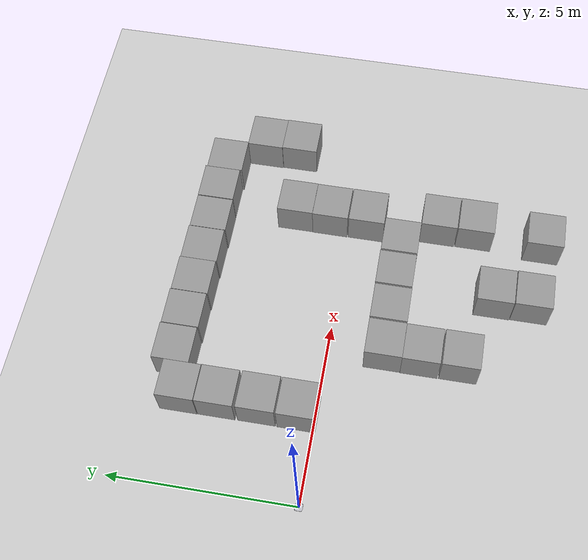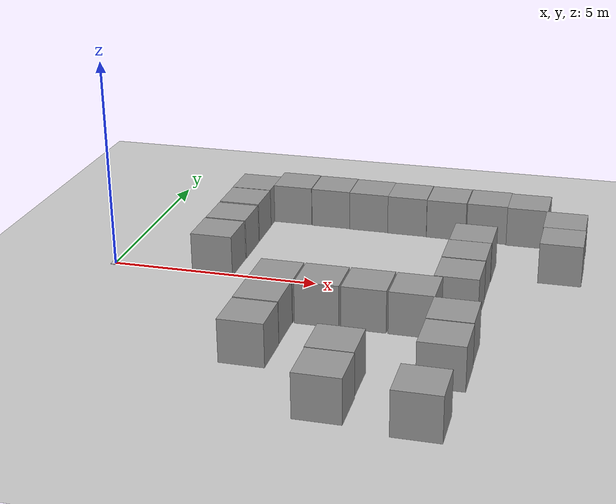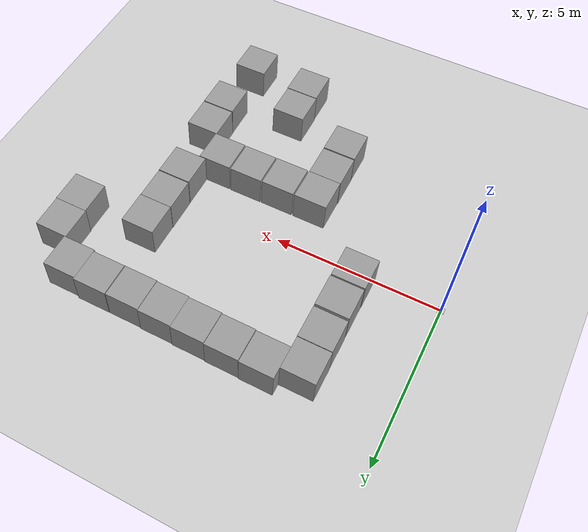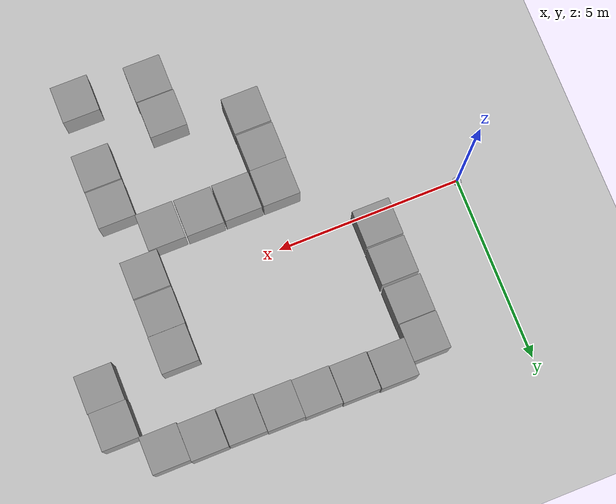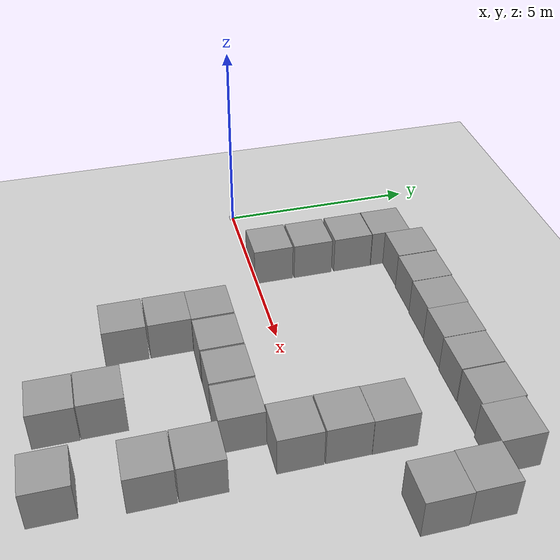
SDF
<sdf version="1.7">
 <world name="default">
  <light name="sun" type="directional">
   <pose>0 0 10 0 -0 0</pose>
   <diffuse>0.8 0.8 0.8 1</diffuse>
   <specular>0.2 0.2 0.2 1</specular>
   <attenuation>
    <range>1000</range>
    <constant>0.9</constant>
    <linear>0.01</linear>
    <quadratic>0.001</quadratic>
   </attenuation>
   <direction>-0.5 0.1 -0.9</direction>
   <spot><inner_angle>0</inner_angle><outer_angle>0</outer_angle><falloff>0</falloff></spot>
  </light>
  <model name="ground_plane">
   <static>1</static>
   <link name="link">
    <collision name="collision">
     <geometry><plane><normal>0 0 1</normal><size>100 100</size></plane></geometry>
     <surface>
      <contact><collide_bitmask>65535</collide_bitmask></contact>
      <friction><ode><mu>100</mu><mu2>50</mu2></ode></friction>
     </surface>
    </collision>
    <visual name="visual">
     <cast_shadows>0</cast_shadows>
     <geometry><plane><normal>0 0 1</normal><size>100 100</size></plane></geometry>
     <material>
      <script><uri>file://media/materials/scripts/gazebo.material</uri><name>Gazebo/Grey</name></script>
     </material>
    </visual>
   </link>
  </model>
  <gravity>0 0 -9.8</gravity>
  <magnetic_field>6e-06 2.3e-05 -4.2e-05</magnetic_field>
  <atmosphere type="adiabatic"/>
  <physics type="ode">
   <max_step_size>0.001</max_step_size>
   <real_time_factor>1</real_time_factor>
   <real_time_update_rate>1000</real_time_update_rate>
  </physics>
  <scene><ambient>0.4 0.4 0.4 1</ambient><background>0.7 0.7 0.7 1</background><shadows>1</shadows></scene>
  <spherical_coordinates>
   <surface_model>EARTH_WGS84</surface_model>
   <latitude_deg>0</latitude_deg>
   <longitude_deg>0</longitude_deg>
   <elevation>0</elevation>
   <heading_deg>0</heading_deg>
  </spherical_coordinates>
  <model name="fwomni">
   <link name="base_footprint">
    <inertial>
     <pose>0.002014 -0 0.005878 0 -0 0</pose>
     <mass>3.04689</mass>
     <inertia>
      <ixx>0.00914958</ixx>
      <ixy>-2.00784e-20</ixy>
      <ixz>-0.000169029</ixz>
      <iyy>0.00953652</iyy>
      <iyz>-2.13965e-20</iyz>
      <izz>0.0183689</izz>
     </inertia>
    </inertial>
    <collision name="base_footprint_fixed_joint_lump__base_link_collision">
     <pose>0 0 0.005 0 -0 0</pose>
     <geometry>
      <mesh>
       <scale>0.001 0.001 0.001</scale>
       <uri>/home/avdhoot/fwomni_ws/src/fwomni/meshes/base_link.stl</uri>
      </mesh>
     </geometry>
     <surface><friction><ode><mu>0.2</mu><mu2>0.2</mu2></ode></friction></surface>
    </collision>
    <collision name="base_footprint_fixed_joint_lump__rplidar_collision_1">
     <pose>0 0 0.045 0 -0 0</pose>
     <geometry>
      <mesh><scale>0.001 0.001 0.001</scale><uri>/home/avdhoot/fwomni_ws/src/fwomni/meshes/rplidar.stl</uri></mesh>
     </geometry>
     <surface><friction><ode><mu>0.2</mu><mu2>0.2</mu2></ode></friction></surface>
    </collision>
    <visual name="base_footprint_fixed_joint_lump__base_link_visual">
     <pose>0 0 0.005 0 -0 0</pose>
     <geometry>
      <mesh>
       <scale>0.001 0.001 0.001</scale>
       <uri>/home/avdhoot/fwomni_ws/src/fwomni/meshes/base_link.stl</uri>
      </mesh>
     </geometry>
     <material>
      <script><name>Gazebo/Silver</name><uri>file://media/materials/scripts/gazebo.material</uri></script>
     </material>
    </visual>
    <visual name="base_footprint_fixed_joint_lump__rplidar_visual_1">
     <pose>0 0 0.045 0 -0 0</pose>
     <geometry>
      <mesh><scale>0.001 0.001 0.001</scale><uri>/home/avdhoot/fwomni_ws/src/fwomni/meshes/rplidar.stl</uri></mesh>
     </geometry>
     <material>
      <script><name>Gazebo/Silver</name><uri>file://media/materials/scripts/gazebo.material</uri></script>
     </material>
    </visual>
    <self_collide>1</self_collide>
    <sensor name="head_hokuyo_sensor" type="ray">
     <visualize>0</visualize>
     <update_rate>20</update_rate>
     <ray>
      <scan>
       <horizontal>
        <samples>1400</samples>
        <resolution>1</resolution>
        <min_angle>-3.14159</min_angle>
        <max_angle>3.14159</max_angle>
       </horizontal>
       <vertical><samples>1</samples><min_angle>0</min_angle><max_angle>0</max_angle></vertical>
      </scan>
      <range><min>0.05</min><max>12</max><resolution>0.01</resolution></range>
      <noise><type>gaussian</type><mean>0</mean><stddev>0.01</stddev></noise>
     </ray>
     <plugin name="gazebo_ros_head_hokuyo_controller" filename="libgazebo_ros_laser.so">
      <topicName>laser/scan</topicName>
      <frameName>rplidar</frameName>
      <robotNamespace>/</robotNamespace>
     </plugin>
     <pose>0.065 0 0.07 0 -0 0</pose>
    </sensor>
   </link>
   <joint name="Cont1" type="revolute">
    <pose relative_to="base_footprint">0.085328 -0.085328 0.01 0 -0 0.785398</pose>
    <parent>base_footprint</parent>
    <child>front_right</child>
    <axis>
     <xyz>0 1 0</xyz>
     <limit><lower>-1e+16</lower><upper>1e+16</upper></limit>
     <dynamics><spring_reference>0</spring_reference><spring_stiffness>0</spring_stiffness></dynamics>
    </axis>
   </joint>
   <link name="front_right">
    <pose relative_to="Cont1">0 0 0 0 -0 0</pose>
    <inertial>
     <pose>0.003 -0 0 0 -0 0</pose>
     <mass>0.0147969</mass>
     <inertia><ixx>0</ixx><ixy>0</ixy><ixz>0</ixz><iyy>1e-06</iyy><iyz>0</iyz><izz>0</izz></inertia>
    </inertial>
    <collision name="front_right_collision">
     <pose>0 0 0 0 0 -1.5708</pose>
     <geometry>
      <mesh><scale>0.001 0.001 0.001</scale><uri>/home/avdhoot/fwomni_ws/src/fwomni/meshes/wheel.stl</uri></mesh>
     </geometry>
     <surface><friction><ode><mu>0.2</mu><mu2>0.2</mu2></ode></friction></surface>
    </collision>
    <visual name="front_right_visual">
     <pose>0 0 0 0 0 -1.5708</pose>
     <geometry>
      <mesh><scale>0.001 0.001 0.001</scale><uri>/home/avdhoot/fwomni_ws/src/fwomni/meshes/wheel.stl</uri></mesh>
     </geometry>
     <material>
      <script><name>Gazebo/Silver</name><uri>file://media/materials/scripts/gazebo.material</uri></script>
     </material>
    </visual>
    <self_collide>1</self_collide>
   </link>
   <joint name="Cont2" type="revolute">
    <pose relative_to="base_footprint">0.085328 0.085328 0.01 0 -0 2.35619</pose>
    <parent>base_footprint</parent>
    <child>front_left</child>
    <axis>
     <xyz>0 1 0</xyz>
     <limit><lower>-1e+16</lower><upper>1e+16</upper></limit>
     <dynamics><spring_reference>0</spring_reference><spring_stiffness>0</spring_stiffness></dynamics>
    </axis>
   </joint>
   <link name="front_left">
    <pose relative_to="Cont2">0 0 0 0 -0 0</pose>
    <inertial>
     <pose>0.003 -0 0 0 -0 0</pose>
     <mass>0.0147969</mass>
     <inertia><ixx>0</ixx><ixy>0</ixy><ixz>0</ixz><iyy>1e-06</iyy><iyz>0</iyz><izz>0</izz></inertia>
    </inertial>
    <collision name="front_left_collision">
     <pose>0 0 0 0 0 -1.5708</pose>
     <geometry>
      <mesh><scale>0.001 0.001 0.001</scale><uri>/home/avdhoot/fwomni_ws/src/fwomni/meshes/wheel.stl</uri></mesh>
     </geometry>
     <surface><friction><ode><mu>0.2</mu><mu2>0.2</mu2></ode></friction></surface>
    </collision>
    <visual name="front_left_visual">
     <pose>0 0 0 0 0 -1.5708</pose>
     <geometry>
      <mesh><scale>0.001 0.001 0.001</scale><uri>/home/avdhoot/fwomni_ws/src/fwomni/meshes/wheel.stl</uri></mesh>
     </geometry>
     <material>
      <script><name>Gazebo/Silver</name><uri>file://media/materials/scripts/gazebo.material</uri></script>
     </material>
    </visual>
    <self_collide>1</self_collide>
   </link>
   <joint name="Cont3" type="revolute">
    <pose relative_to="base_footprint">-0.085328 0.085328 0.01 0 0 -2.35619</pose>
    <parent>base_footprint</parent>
    <child>rear_left</child>
    <axis>
     <xyz>0 1 0</xyz>
     <limit><lower>-1e+16</lower><upper>1e+16</upper></limit>
     <dynamics><spring_reference>0</spring_reference><spring_stiffness>0</spring_stiffness></dynamics>
    </axis>
   </joint>
   <link name="rear_left">
    <pose relative_to="Cont3">0 0 0 0 -0 0</pose>
    <inertial>
     <pose>0.003 -0 0 0 -0 0</pose>
     <mass>0.0147969</mass>
     <inertia><ixx>0</ixx><ixy>0</ixy><ixz>0</ixz><iyy>1e-06</iyy><iyz>0</iyz><izz>0</izz></inertia>
    </inertial>
    <collision name="rear_left_collision">
     <pose>0 0 0 0 0 -1.5708</pose>
     <geometry>
      <mesh><scale>0.001 0.001 0.001</scale><uri>/home/avdhoot/fwomni_ws/src/fwomni/meshes/wheel.stl</uri></mesh>
     </geometry>
     <surface><friction><ode><mu>0.2</mu><mu2>0.2</mu2></ode></friction></surface>
    </collision>
    <visual name="rear_left_visual">
     <pose>0 0 0 0 0 -1.5708</pose>
     <geometry>
      <mesh><scale>0.001 0.001 0.001</scale><uri>/home/avdhoot/fwomni_ws/src/fwomni/meshes/wheel.stl</uri></mesh>
     </geometry>
     <material>
      <script><name>Gazebo/Silver</name><uri>file://media/materials/scripts/gazebo.material</uri></script>
     </material>
    </visual>
    <self_collide>1</self_collide>
   </link>
   <joint name="Cont4" type="revolute">
    <pose relative_to="base_footprint">-0.085328 -0.085328 0.01 0 0 -0.785398</pose>
    <parent>base_footprint</parent>
    <child>rear_right</child>
    <axis>
     <xyz>0 1 0</xyz>
     <limit><lower>-1e+16</lower><upper>1e+16</upper></limit>
     <dynamics><spring_reference>0</spring_reference><spring_stiffness>0</spring_stiffness></dynamics>
    </axis>
   </joint>
   <link name="rear_right">
    <pose relative_to="Cont4">0 0 0 0 -0 0</pose>
    <inertial>
     <pose>0.003 -0 0 0 -0 0</pose>
     <mass>0.0147969</mass>
     <inertia><ixx>0</ixx><ixy>0</ixy><ixz>0</ixz><iyy>1e-06</iyy><iyz>0</iyz><izz>0</izz></inertia>
    </inertial>
    <collision name="rear_right_collision">
     <pose>0 0 0 0 0 -1.5708</pose>
     <geometry>
      <mesh><scale>0.001 0.001 0.001</scale><uri>/home/avdhoot/fwomni_ws/src/fwomni/meshes/wheel.stl</uri></mesh>
     </geometry>
     <surface><friction><ode><mu>0.2</mu><mu2>0.2</mu2></ode></friction></surface>
    </collision>
    <visual name="rear_right_visual">
     <pose>0 0 0 0 0 -1.5708</pose>
     <geometry>
      <mesh><scale>0.001 0.001 0.001</scale><uri>/home/avdhoot/fwomni_ws/src/fwomni/meshes/wheel.stl</uri></mesh>
     </geometry>
     <material>
      <script><name>Gazebo/Silver</name><uri>file://media/materials/scripts/gazebo.material</uri></script>
     </material>
    </visual>
    <self_collide>1</self_collide>
   </link>
   <plugin name="control" filename="libgazebo_ros_control.so"><robotNamespace>/</robotNamespace></plugin>
   <static>0</static>
   <plugin name="mecanum_drive" filename="libgazebo_ros_planar_move.so">
    <commandTopic>cmd_vel</commandTopic>
    <odometryTopic>odom</odometryTopic>
    <odometryFrame>odom</odometryFrame>
    <odometryRate>100.0</odometryRate>
    <robotBaseFrame>base_footprint</robotBaseFrame>
    <publishTF>1</publishTF>
    <robotNamespace>/</robotNamespace>
   </plugin>
   <pose>3e-06 5e-06 -3.6e-05 0 8e-06 7e-06</pose>
  </model>
  <model name="unit_box">
   <pose>2.48751 1.48263 0.499995 0 1e-05 0</pose>
   <link name="link">
    <inertial>
     <mass>1</mass>
     <inertia>
      <ixx>0.166667</ixx>
      <ixy>0</ixy>
      <ixz>0</ixz>
      <iyy>0.166667</iyy>
      <iyz>0</iyz>
      <izz>0.166667</izz>
     </inertia>
    </inertial>
    <collision name="collision"><geometry><box><size>1 1 1</size></box></geometry></collision>
    <visual name="visual">
     <geometry><box><size>1 1 1</size></box></geometry>
     <material>
      <script><name>Gazebo/Grey</name><uri>file://media/materials/scripts/gazebo.material</uri></script>
     </material>
    </visual>
   </link>
  </model>
  <model name="unit_box_0">
   <pose>2.48148 2.5505 0.499995 -1e-05 -0 -0</pose>
   <link name="link">
    <inertial>
     <mass>1</mass>
     <inertia>
      <ixx>0.166667</ixx>
      <ixy>0</ixy>
      <ixz>0</ixz>
      <iyy>0.166667</iyy>
      <iyz>0</iyz>
      <izz>0.166667</izz>
     </inertia>
    </inertial>
    <collision name="collision"><geometry><box><size>1 1 1</size></box></geometry></collision>
    <visual name="visual">
     <geometry><box><size>1 1 1</size></box></geometry>
     <material>
      <script><name>Gazebo/Grey</name><uri>file://media/materials/scripts/gazebo.material</uri></script>
     </material>
    </visual>
   </link>
  </model>
  <model name="unit_box_1">
   <pose>2.47553 3.56503 0.499995 0 1e-05 0.000122</pose>
   <link name="link">
    <inertial>
     <mass>1</mass>
     <inertia>
      <ixx>0.166667</ixx>
      <ixy>0</ixy>
      <ixz>0</ixz>
      <iyy>0.166667</iyy>
      <iyz>0</iyz>
      <izz>0.166667</izz>
     </inertia>
    </inertial>
    <collision name="collision"><geometry><box><size>1 1 1</size></box></geometry></collision>
    <visual name="visual">
     <geometry><box><size>1 1 1</size></box></geometry>
     <material>
      <script><name>Gazebo/Grey</name><uri>file://media/materials/scripts/gazebo.material</uri></script>
     </material>
    </visual>
   </link>
  </model>
  <model name="unit_box_2">
   <pose>3.47549 3.9044 0.499995 0 1e-05 0.000124</pose>
   <link name="link">
    <inertial>
     <mass>1</mass>
     <inertia>
      <ixx>0.166667</ixx>
      <ixy>0</ixy>
      <ixz>0</ixz>
      <iyy>0.166667</iyy>
      <iyz>0</iyz>
      <izz>0.166667</izz>
     </inertia>
    </inertial>
    <collision name="collision"><geometry><box><size>1 1 1</size></box></geometry></collision>
    <visual name="visual">
     <geometry><box><size>1 1 1</size></box></geometry>
     <material>
      <script><name>Gazebo/Grey</name><uri>file://media/materials/scripts/gazebo.material</uri></script>
     </material>
    </visual>
   </link>
  </model>
  <model name="unit_box_3">
   <pose>4.48991 3.88312 0.499995 0 1e-05 0</pose>
   <link name="link">
    <inertial>
     <mass>1</mass>
     <inertia>
      <ixx>0.166667</ixx>
      <ixy>0</ixy>
      <ixz>0</ixz>
      <iyy>0.166667</iyy>
      <iyz>0</iyz>
      <izz>0.166667</izz>
     </inertia>
    </inertial>
    <collision name="collision"><geometry><box><size>1 1 1</size></box></geometry></collision>
    <visual name="visual">
     <geometry><box><size>1 1 1</size></box></geometry>
     <material>
      <script><name>Gazebo/Grey</name><uri>file://media/materials/scripts/gazebo.material</uri></script>
     </material>
    </visual>
   </link>
  </model>
  <model name="unit_box_4">
   <pose>5.49843 3.86189 0.499995 0 1e-05 -0.000146</pose>
   <link name="link">
    <inertial>
     <mass>1</mass>
     <inertia>
      <ixx>0.166667</ixx>
      <ixy>0</ixy>
      <ixz>0</ixz>
      <iyy>0.166667</iyy>
      <iyz>0</iyz>
      <izz>0.166667</izz>
     </inertia>
    </inertial>
    <collision name="collision"><geometry><box><size>1 1 1</size></box></geometry></collision>
    <visual name="visual">
     <geometry><box><size>1 1 1</size></box></geometry>
     <material>
      <script><name>Gazebo/Grey</name><uri>file://media/materials/scripts/gazebo.material</uri></script>
     </material>
    </visual>
   </link>
  </model>
  <model name="unit_box_5">
   <pose>6.49842 3.84038 0.499995 0 1e-05 -0.000148</pose>
   <link name="link">
    <inertial>
     <mass>1</mass>
     <inertia>
      <ixx>0.166667</ixx>
      <ixy>0</ixy>
      <ixz>0</ixz>
      <iyy>0.166667</iyy>
      <iyz>0</iyz>
      <izz>0.166667</izz>
     </inertia>
    </inertial>
    <collision name="collision"><geometry><box><size>1 1 1</size></box></geometry></collision>
    <visual name="visual">
     <geometry><box><size>1 1 1</size></box></geometry>
     <material>
      <script><name>Gazebo/Grey</name><uri>file://media/materials/scripts/gazebo.material</uri></script>
     </material>
    </visual>
   </link>
  </model>
  <model name="unit_box_6">
   <pose>2.4799 0.4415 0.499995 -1e-05 -0 -0</pose>
   <link name="link">
    <inertial>
     <mass>1</mass>
     <inertia>
      <ixx>0.166667</ixx>
      <ixy>0</ixy>
      <ixz>0</ixz>
      <iyy>0.166667</iyy>
      <iyz>0</iyz>
      <izz>0.166667</izz>
     </inertia>
    </inertial>
    <collision name="collision"><geometry><box><size>1 1 1</size></box></geometry></collision>
    <visual name="visual">
     <geometry><box><size>1 1 1</size></box></geometry>
     <material>
      <script><name>Gazebo/Grey</name><uri>file://media/materials/scripts/gazebo.material</uri></script>
     </material>
    </visual>
   </link>
  </model>
  <model name="unit_box_7">
   <pose>4.51925 -1.5052 0.499995 -0 1e-05 -6e-05</pose>
   <link name="link">
    <inertial>
     <mass>1</mass>
     <inertia>
      <ixx>0.166667</ixx>
      <ixy>0</ixy>
      <ixz>0</ixz>
      <iyy>0.166667</iyy>
      <iyz>0</iyz>
      <izz>0.166667</izz>
     </inertia>
    </inertial>
    <collision name="collision"><geometry><box><size>1 1 1</size></box></geometry></collision>
    <visual name="visual">
     <geometry><box><size>1 1 1</size></box></geometry>
     <material>
      <script><name>Gazebo/Grey</name><uri>file://media/materials/scripts/gazebo.material</uri></script>
     </material>
    </visual>
   </link>
  </model>
  <model name="unit_box_8">
   <pose>5.56012 -1.50364 0.499995 -1e-05 -0 -0</pose>
   <link name="link">
    <inertial>
     <mass>1</mass>
     <inertia>
      <ixx>0.166667</ixx>
      <ixy>0</ixy>
      <ixz>0</ixz>
      <iyy>0.166667</iyy>
      <iyz>0</iyz>
      <izz>0.166667</izz>
     </inertia>
    </inertial>
    <collision name="collision"><geometry><box><size>1 1 1</size></box></geometry></collision>
    <visual name="visual">
     <geometry><box><size>1 1 1</size></box></geometry>
     <material>
      <script><name>Gazebo/Grey</name><uri>file://media/materials/scripts/gazebo.material</uri></script>
     </material>
    </visual>
   </link>
  </model>
  <model name="unit_box_9">
   <pose>6.6011 -1.49802 0.499995 0 1e-05 0</pose>
   <link name="link">
    <inertial>
     <mass>1</mass>
     <inertia>
      <ixx>0.166667</ixx>
      <ixy>0</ixy>
      <ixz>0</ixz>
      <iyy>0.166667</iyy>
      <iyz>0</iyz>
      <izz>0.166667</izz>
     </inertia>
    </inertial>
    <collision name="collision"><geometry><box><size>1 1 1</size></box></geometry></collision>
    <visual name="visual">
     <geometry><box><size>1 1 1</size></box></geometry>
     <material>
      <script><name>Gazebo/Grey</name><uri>file://media/materials/scripts/gazebo.material</uri></script>
     </material>
    </visual>
   </link>
  </model>
  <model name="unit_box_10">
   <pose>7.64191 -1.50574 0.499995 -1e-05 -0 -0</pose>
   <link name="link">
    <inertial>
     <mass>1</mass>
     <inertia>
      <ixx>0.166667</ixx>
      <ixy>0</ixy>
      <ixz>0</ixz>
      <iyy>0.166667</iyy>
      <iyz>0</iyz>
      <izz>0.166667</izz>
     </inertia>
    </inertial>
    <collision name="collision"><geometry><box><size>1 1 1</size></box></geometry></collision>
    <visual name="visual">
     <geometry><box><size>1 1 1</size></box></geometry>
     <material>
      <script><name>Gazebo/Grey</name><uri>file://media/materials/scripts/gazebo.material</uri></script>
     </material>
    </visual>
   </link>
  </model>
  <model name="unit_box_11">
   <pose>8.43615 -0.487287 0.499995 0 1e-05 0</pose>
   <link name="link">
    <inertial>
     <mass>1</mass>
     <inertia>
      <ixx>0.166667</ixx>
      <ixy>0</ixy>
      <ixz>0</ixz>
      <iyy>0.166667</iyy>
      <iyz>0</iyz>
      <izz>0.166667</izz>
     </inertia>
    </inertial>
    <collision name="collision"><geometry><box><size>1 1 1</size></box></geometry></collision>
    <visual name="visual">
     <geometry><box><size>1 1 1</size></box></geometry>
     <material>
      <script><name>Gazebo/Grey</name><uri>file://media/materials/scripts/gazebo.material</uri></script>
     </material>
    </visual>
   </link>
  </model>
  <model name="unit_box_12">
   <pose>8.43081 0.540332 0.499995 -1e-05 -0 -0</pose>
   <link name="link">
    <inertial>
     <mass>1</mass>
     <inertia>
      <ixx>0.166667</ixx>
      <ixy>0</ixy>
      <ixz>0</ixz>
      <iyy>0.166667</iyy>
      <iyz>0</iyz>
      <izz>0.166667</izz>
     </inertia>
    </inertial>
    <collision name="collision"><geometry><box><size>1 1 1</size></box></geometry></collision>
    <visual name="visual">
     <geometry><box><size>1 1 1</size></box></geometry>
     <material>
      <script><name>Gazebo/Grey</name><uri>file://media/materials/scripts/gazebo.material</uri></script>
     </material>
    </visual>
   </link>
  </model>
  <model name="unit_box_13">
   <pose>8.43891 1.54142 0.499995 0 1e-05 0</pose>
   <link name="link">
    <inertial>
     <mass>1</mass>
     <inertia>
      <ixx>0.166667</ixx>
      <ixy>0</ixy>
      <ixz>0</ixz>
      <iyy>0.166667</iyy>
      <iyz>0</iyz>
      <izz>0.166667</izz>
     </inertia>
    </inertial>
    <collision name="collision"><geometry><box><size>1 1 1</size></box></geometry></collision>
    <visual name="visual">
     <geometry><box><size>1 1 1</size></box></geometry>
     <material>
      <script><name>Gazebo/Grey</name><uri>file://media/materials/scripts/gazebo.material</uri></script>
     </material>
    </visual>
   </link>
  </model>
  <model name="unit_box_14">
   <pose>7.50576 3.81922 0.499995 -1e-05 -0 -0</pose>
   <link name="link">
    <inertial>
     <mass>1</mass>
     <inertia>
      <ixx>0.166667</ixx>
      <ixy>0</ixy>
      <ixz>0</ixz>
      <iyy>0.166667</iyy>
      <iyz>0</iyz>
      <izz>0.166667</izz>
     </inertia>
    </inertial>
    <collision name="collision"><geometry><box><size>1 1 1</size></box></geometry></collision>
    <visual name="visual">
     <geometry><box><size>1 1 1</size></box></geometry>
     <material>
      <script><name>Gazebo/Grey</name><uri>file://media/materials/scripts/gazebo.material</uri></script>
     </material>
    </visual>
   </link>
  </model>
  <model name="unit_box_15">
   <pose>8.52624 3.82487 0.499995 -1e-05 0 0.003258</pose>
   <link name="link">
    <inertial>
     <mass>1</mass>
     <inertia>
      <ixx>0.166667</ixx>
      <ixy>0</ixy>
      <ixz>0</ixz>
      <iyy>0.166667</iyy>
      <iyz>0</iyz>
      <izz>0.166667</izz>
     </inertia>
    </inertial>
    <collision name="collision"><geometry><box><size>1 1 1</size></box></geometry></collision>
    <visual name="visual">
     <geometry><box><size>1 1 1</size></box></geometry>
     <material>
      <script><name>Gazebo/Grey</name><uri>file://media/materials/scripts/gazebo.material</uri></script>
     </material>
    </visual>
   </link>
  </model>
  <model name="unit_box_16">
   <pose>9.52643 3.78198 0.499995 -0 1e-05 0.003302</pose>
   <link name="link">
    <inertial>
     <mass>1</mass>
     <inertia>
      <ixx>0.166667</ixx>
      <ixy>0</ixy>
      <ixz>0</ixz>
      <iyy>0.166667</iyy>
      <iyz>0</iyz>
      <izz>0.166667</izz>
     </inertia>
    </inertial>
    <collision name="collision"><geometry><box><size>1 1 1</size></box></geometry></collision>
    <visual name="visual">
     <geometry><box><size>1 1 1</size></box></geometry>
     <material>
      <script><name>Gazebo/Grey</name><uri>file://media/materials/scripts/gazebo.material</uri></script>
     </material>
    </visual>
   </link>
  </model>
  <model name="unit_box_17">
   <pose>10.4895 2.78413 0.499995 0 1e-05 0.001265</pose>
   <link name="link">
    <inertial>
     <mass>1</mass>
     <inertia>
      <ixx>0.166667</ixx>
      <ixy>0</ixy>
      <ixz>0</ixz>
      <iyy>0.166667</iyy>
      <iyz>0</iyz>
      <izz>0.166667</izz>
     </inertia>
    </inertial>
    <collision name="collision"><geometry><box><size>1 1 1</size></box></geometry></collision>
    <visual name="visual">
     <geometry><box><size>1 1 1</size></box></geometry>
     <material>
      <script><name>Gazebo/Grey</name><uri>file://media/materials/scripts/gazebo.material</uri></script>
     </material>
    </visual>
   </link>
  </model>
  <model name="unit_box_18">
   <pose>10.5072 1.78404 0.5 0 -0 0.00104</pose>
   <link name="link">
    <inertial>
     <mass>1</mass>
     <inertia>
      <ixx>0.166667</ixx>
      <ixy>0</ixy>
      <ixz>0</ixz>
      <iyy>0.166667</iyy>
      <iyz>0</iyz>
      <izz>0.166667</izz>
     </inertia>
    </inertial>
    <collision name="collision"><geometry><box><size>1 1 1</size></box></geometry></collision>
    <visual name="visual">
     <geometry><box><size>1 1 1</size></box></geometry>
     <material>
      <script><name>Gazebo/Grey</name><uri>file://media/materials/scripts/gazebo.material</uri></script>
     </material>
    </visual>
   </link>
  </model>
  <model name="unit_box_19">
   <pose>6.57092 -5.26855 0.499995 0 1e-05 0</pose>
   <link name="link">
    <inertial>
     <mass>1</mass>
     <inertia>
      <ixx>0.166667</ixx>
      <ixy>0</ixy>
      <ixz>0</ixz>
      <iyy>0.166667</iyy>
      <iyz>0</iyz>
      <izz>0.166667</izz>
     </inertia>
    </inertial>
    <collision name="collision"><geometry><box><size>1 1 1</size></box></geometry></collision>
    <visual name="visual">
     <geometry><box><size>1 1 1</size></box></geometry>
     <material>
      <script><name>Gazebo/Grey</name><uri>file://media/materials/scripts/gazebo.material</uri></script>
     </material>
    </visual>
   </link>
  </model>
  <model name="unit_box_20">
   <pose>6.5553 -4.25129 0.499995 -1e-05 -0 -0</pose>
   <link name="link">
    <inertial>
     <mass>1</mass>
     <inertia>
      <ixx>0.166667</ixx>
      <ixy>0</ixy>
      <ixz>0</ixz>
      <iyy>0.166667</iyy>
      <iyz>0</iyz>
      <izz>0.166667</izz>
     </inertia>
    </inertial>
    <collision name="collision"><geometry><box><size>1 1 1</size></box></geometry></collision>
    <visual name="visual">
     <geometry><box><size>1 1 1</size></box></geometry>
     <material>
      <script><name>Gazebo/Grey</name><uri>file://media/materials/scripts/gazebo.material</uri></script>
     </material>
    </visual>
   </link>
  </model>
  <model name="unit_box_21">
   <pose>8.62003 -2.51019 0.499995 0 1e-05 0</pose>
   <link name="link">
    <inertial>
     <mass>1</mass>
     <inertia>
      <ixx>0.166667</ixx>
      <ixy>0</ixy>
      <ixz>0</ixz>
      <iyy>0.166667</iyy>
      <iyz>0</iyz>
      <izz>0.166667</izz>
     </inertia>
    </inertial>
    <collision name="collision"><geometry><box><size>1 1 1</size></box></geometry></collision>
    <visual name="visual">
     <geometry><box><size>1 1 1</size></box></geometry>
     <material>
      <script><name>Gazebo/Grey</name><uri>file://media/materials/scripts/gazebo.material</uri></script>
     </material>
    </visual>
   </link>
  </model>
  <model name="unit_box_22">
   <pose>8.62954 -3.53587 0.499995 -1e-05 -0 -0</pose>
   <link name="link">
    <inertial>
     <mass>1</mass>
     <inertia>
      <ixx>0.166667</ixx>
      <ixy>0</ixy>
      <ixz>0</ixz>
      <iyy>0.166667</iyy>
      <iyz>0</iyz>
      <izz>0.166667</izz>
     </inertia>
    </inertial>
    <collision name="collision"><geometry><box><size>1 1 1</size></box></geometry></collision>
    <visual name="visual">
     <geometry><box><size>1 1 1</size></box></geometry>
     <material>
      <script><name>Gazebo/Grey</name><uri>file://media/materials/scripts/gazebo.material</uri></script>
     </material>
    </visual>
   </link>
  </model>
  <model name="unit_box_23">
   <pose>8.50512 -5.44877 0.499995 0 1e-05 -1.4e-05</pose>
   <link name="link">
    <inertial>
     <mass>1</mass>
     <inertia>
      <ixx>0.166667</ixx>
      <ixy>0</ixy>
      <ixz>0</ixz>
      <iyy>0.166667</iyy>
      <iyz>0</iyz>
      <izz>0.166667</izz>
     </inertia>
    </inertial>
    <collision name="collision"><geometry><box><size>1 1 1</size></box></geometry></collision>
    <visual name="visual">
     <geometry><box><size>1 1 1</size></box></geometry>
     <material>
      <script><name>Gazebo/Grey</name><uri>file://media/materials/scripts/gazebo.material</uri></script>
     </material>
    </visual>
   </link>
  </model>
  <model name="unit_box_24">
   <pose>4.50939 -2.50521 0.499995 0 -1e-05 -5.9e-05</pose>
   <link name="link">
    <inertial>
     <mass>1</mass>
     <inertia>
      <ixx>0.166667</ixx>
      <ixy>0</ixy>
      <ixz>0</ixz>
      <iyy>0.166667</iyy>
      <iyz>0</iyz>
      <izz>0.166667</izz>
     </inertia>
    </inertial>
    <collision name="collision"><geometry><box><size>1 1 1</size></box></geometry></collision>
    <visual name="visual">
     <geometry><box><size>1 1 1</size></box></geometry>
     <material>
      <script><name>Gazebo/Grey</name><uri>file://media/materials/scripts/gazebo.material</uri></script>
     </material>
    </visual>
   </link>
  </model>
  <model name="unit_box_25">
   <pose>4.51514 -3.54155 0.5 0 -0 0</pose>
   <link name="link">
    <inertial>
     <mass>1</mass>
     <inertia>
      <ixx>0.166667</ixx>
      <ixy>0</ixy>
      <ixz>0</ixz>
      <iyy>0.166667</iyy>
      <iyz>0</iyz>
      <izz>0.166667</izz>
     </inertia>
    </inertial>
    <collision name="collision"><geometry><box><size>1 1 1</size></box></geometry></collision>
    <visual name="visual">
     <geometry><box><size>1 1 1</size></box></geometry>
     <material>
      <script><name>Gazebo/Grey</name><uri>file://media/materials/scripts/gazebo.material</uri></script>
     </material>
    </visual>
   </link>
  </model>
 </world>
</sdf>
